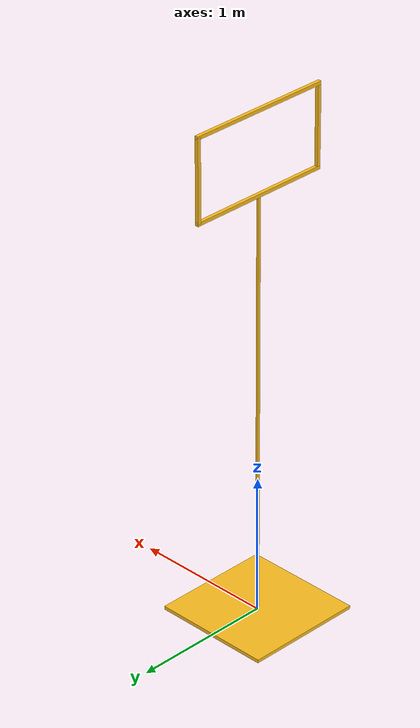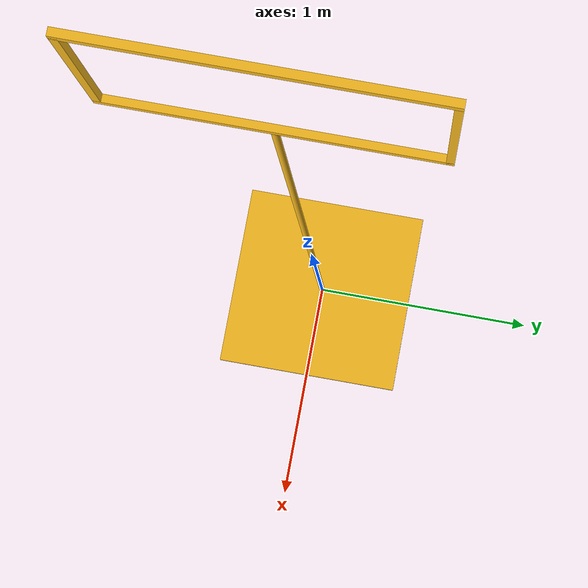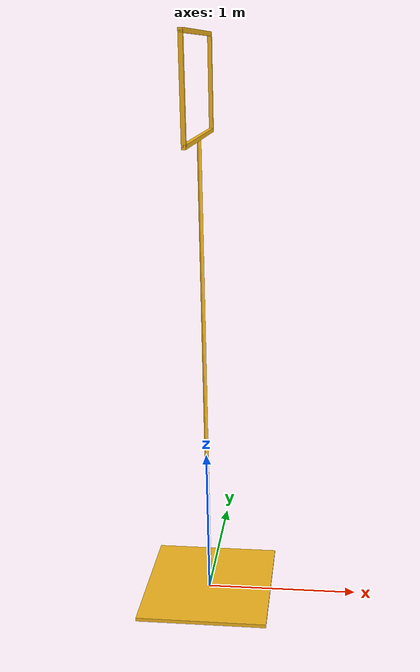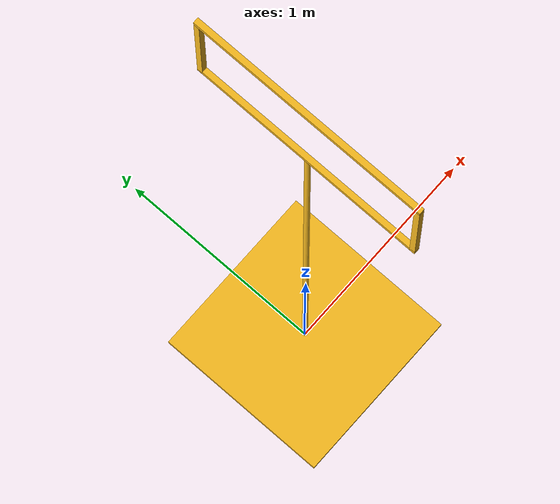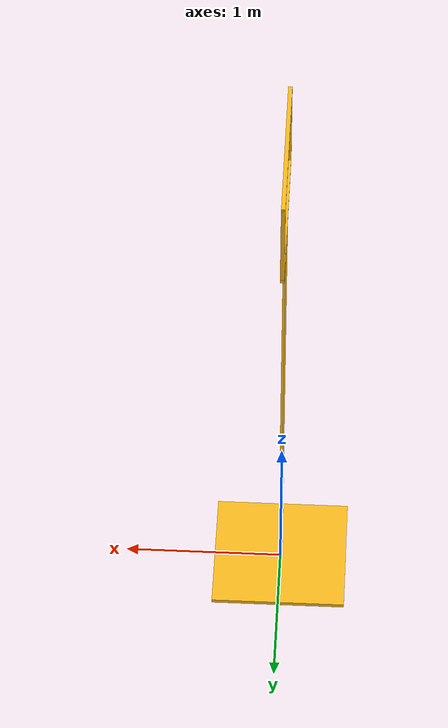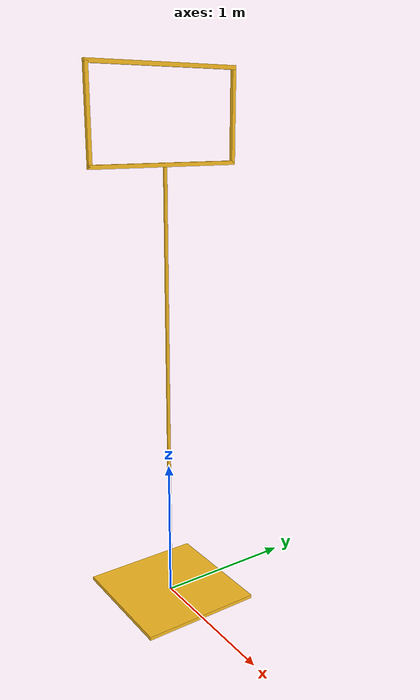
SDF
<?xml version='1.0'?>
<sdf version='1.6'>
  <model name='Gate'>
    <link name='link_2'>
      <inertial>
        <mass>1</mass>
        <inertia>
          <ixx>0.166667</ixx>
          <ixy>0</ixy>
          <ixz>0</ixz>
          <iyy>0.166667</iyy>
          <iyz>0</iyz>
          <izz>0.166667</izz>
        </inertia>
        <pose frame=''>0 0 0.0125 0 -0 0</pose>
      </inertial>
      <pose frame=''>-0 -0 0.0125 0 -0 0</pose>
      <gravity>1</gravity>
      <self_collide>0</self_collide>
      <kinematic>0</kinematic>
      <enable_wind>0</enable_wind>
      <visual name='visual'>
        <pose frame=''>0 0 0 0 -0 0</pose>
        <geometry>
          <box>
            <size>0.85 0.85 0.025</size>
          </box>
        </geometry>
        <material>
          <lighting>1</lighting>
          <script>
            <uri>file://media/materials/scripts/gazebo.material</uri>
            <name>Gazebo/Grey</name>
          </script>
          <shader type='pixel'>
            <normal_map>__default__</normal_map>
          </shader>
          <ambient>0.988 0.741 0.122 1</ambient>
          <diffuse>0.988 0.741 0.122 1</diffuse>
          <specular>0.988 0.741 0.122 1</specular>
          <emissive>0 0 0 1</emissive>
        </material>
        <transparency>0</transparency>
        <cast_shadows>1</cast_shadows>
      </visual>
      <collision name='collision'>
        <laser_retro>0</laser_retro>
        <max_contacts>10</max_contacts>
        <pose frame=''>0 0 0 0 -0 0</pose>
        <geometry>
          <box>
            <size>0.85 0.85 0.025</size>
          </box>
        </geometry>
        <surface>
          <friction>
            <ode>
              <mu>1</mu>
              <mu2>1</mu2>
              <fdir1>0 0 0</fdir1>
              <slip1>0</slip1>
              <slip2>0</slip2>
            </ode>
            <torsional>
              <coefficient>1</coefficient>
              <patch_radius>0</patch_radius>
              <surface_radius>0</surface_radius>
              <use_patch_radius>1</use_patch_radius>
              <ode>
                <slip>0</slip>
              </ode>
            </torsional>
          </friction>
          <bounce>
            <restitution_coefficient>0</restitution_coefficient>
            <threshold>1e+06</threshold>
          </bounce>
          <contact>
            <collide_without_contact>0</collide_without_contact>
            <collide_without_contact_bitmask>1</collide_without_contact_bitmask>
            <collide_bitmask>1</collide_bitmask>
            <ode>
              <soft_cfm>0</soft_cfm>
              <soft_erp>0.2</soft_erp>
              <kp>1e+13</kp>
              <kd>1</kd>
              <max_vel>0.01</max_vel>
              <min_depth>0</min_depth>
            </ode>
            <bullet>
              <split_impulse>1</split_impulse>
              <split_impulse_penetration_threshold>-0.01</split_impulse_penetration_threshold>
              <soft_cfm>0</soft_cfm>
              <soft_erp>0.2</soft_erp>
              <kp>1e+13</kp>
              <kd>1</kd>
            </bullet>
          </contact>
        </surface>
      </collision>
    </link>
    <link name='link_3'>
      <inertial>
        <mass>0.00444894</mass>
        <inertia>
          <ixx>0.00033485</ixx>
          <ixy>0</ixy>
          <ixz>0</ixz>
          <iyy>0.00033485</iyy>
          <iyz>0</iyz>
          <izz>2.61e-06</izz>
        </inertia>
        <pose frame=''>0 0 1.525 0 -0 0</pose>
      </inertial>
      <pose frame=''>0 0 1.525 0 -0 0</pose>
      <gravity>1</gravity>
      <self_collide>0</self_collide>
      <kinematic>0</kinematic>
      <enable_wind>0</enable_wind>
      <visual name='visual'>
        <pose frame=''>0 0 0 0 -0 0</pose>
        <geometry>
          <cylinder>
            <radius>0.0125</radius>
            <length>3.025</length>
          </cylinder>
        </geometry>
        <material>
          <lighting>1</lighting>
          <script>
            <uri>file://media/materials/scripts/gazebo.material</uri>
            <name>Gazebo/Grey</name>
          </script>
          <shader type='pixel'>
            <normal_map>__default__</normal_map>
          </shader>
          <ambient>0.988 0.741 0.122 1</ambient>
          <diffuse>0.988 0.741 0.122 1</diffuse>
          <specular>0.988 0.741 0.122 1</specular>
          <emissive>0 0 0 1</emissive>
        </material>
        <transparency>0</transparency>
        <cast_shadows>1</cast_shadows>
      </visual>
      <collision name='collision'>
        <laser_retro>0</laser_retro>
        <max_contacts>10</max_contacts>
        <pose frame=''>0 0 0 0 -0 0</pose>
        <geometry>
          <cylinder>
            <radius>0.0125</radius>
            <length>3.025</length>
          </cylinder>
        </geometry>
        <surface>
          <friction>
            <ode>
              <mu>1</mu>
              <mu2>1</mu2>
              <fdir1>0 0 0</fdir1>
              <slip1>0</slip1>
              <slip2>0</slip2>
            </ode>
            <torsional>
              <coefficient>1</coefficient>
              <patch_radius>0</patch_radius>
              <surface_radius>0</surface_radius>
              <use_patch_radius>1</use_patch_radius>
              <ode>
                <slip>0</slip>
              </ode>
            </torsional>
          </friction>
          <bounce>
            <restitution_coefficient>0</restitution_coefficient>
            <threshold>1e+06</threshold>
          </bounce>
          <contact>
            <collide_without_contact>0</collide_without_contact>
            <collide_without_contact_bitmask>1</collide_without_contact_bitmask>
            <collide_bitmask>1</collide_bitmask>
            <ode>
              <soft_cfm>0</soft_cfm>
              <soft_erp>0.2</soft_erp>
              <kp>1e+13</kp>
              <kd>1</kd>
              <max_vel>0.01</max_vel>
              <min_depth>0</min_depth>
            </ode>
            <bullet>
              <split_impulse>1</split_impulse>
              <split_impulse_penetration_threshold>-0.01</split_impulse_penetration_threshold>
              <soft_cfm>0</soft_cfm>
              <soft_erp>0.2</soft_erp>
              <kp>1e+13</kp>
              <kd>1</kd>
            </bullet>
          </contact>
        </surface>
      </collision>
    </link>
    <link name='link_5'>
      <inertial>
        <mass>1</mass>
        <inertia>
          <ixx>0.166667</ixx>
          <ixy>0</ixy>
          <ixz>0</ixz>
          <iyy>0.166667</iyy>
          <iyz>0</iyz>
          <izz>0.166667</izz>
        </inertia>
        <pose frame=''>0 0 3.0375 0 -0 0</pose>
      </inertial>
      <pose frame=''>0 0 3.0375 0 -0 0</pose>
      <gravity>1</gravity>
      <self_collide>0</self_collide>
      <kinematic>0</kinematic>
      <enable_wind>0</enable_wind>
      <visual name='visual'>
        <pose frame=''>0 0 0 0 -0 0</pose>
        <geometry>
          <box>
            <size>0.025 1.05 0.025</size>
          </box>
        </geometry>
        <material>
          <lighting>1</lighting>
          <script>
            <uri>file://media/materials/scripts/gazebo.material</uri>
            <name>Gazebo/Grey</name>
          </script>
          <shader type='pixel'>
            <normal_map>__default__</normal_map>
          </shader>
          <ambient>0.988 0.741 0.122 1</ambient>
          <diffuse>0.988 0.741 0.122 1</diffuse>
          <specular>0.988 0.741 0.122 1</specular>
          <emissive>0 0 0 1</emissive>
        </material>
        <transparency>0</transparency>
        <cast_shadows>1</cast_shadows>
      </visual>
      <collision name='collision'>
        <laser_retro>0</laser_retro>
        <max_contacts>10</max_contacts>
        <pose frame=''>0 0 0 0 -0 0</pose>
        <geometry>
          <box>
            <size>0.025 1.05 0.025</size>
          </box>
        </geometry>
        <surface>
          <friction>
            <ode>
              <mu>1</mu>
              <mu2>1</mu2>
              <fdir1>0 0 0</fdir1>
              <slip1>0</slip1>
              <slip2>0</slip2>
            </ode>
            <torsional>
              <coefficient>1</coefficient>
              <patch_radius>0</patch_radius>
              <surface_radius>0</surface_radius>
              <use_patch_radius>1</use_patch_radius>
              <ode>
                <slip>0</slip>
              </ode>
            </torsional>
          </friction>
          <bounce>
            <restitution_coefficient>0</restitution_coefficient>
            <threshold>1e+06</threshold>
          </bounce>
          <contact>
            <collide_without_contact>0</collide_without_contact>
            <collide_without_contact_bitmask>1</collide_without_contact_bitmask>
            <collide_bitmask>1</collide_bitmask>
            <ode>
              <soft_cfm>0</soft_cfm>
              <soft_erp>0.2</soft_erp>
              <kp>1e+13</kp>
              <kd>1</kd>
              <max_vel>0.01</max_vel>
              <min_depth>0</min_depth>
            </ode>
            <bullet>
              <split_impulse>1</split_impulse>
              <split_impulse_penetration_threshold>-0.01</split_impulse_penetration_threshold>
              <soft_cfm>0</soft_cfm>
              <soft_erp>0.2</soft_erp>
              <kp>1e+13</kp>
              <kd>1</kd>
            </bullet>
          </contact>
        </surface>
      </collision>
    </link>
    <link name='link_5_clone'>
      <inertial>
        <mass>1</mass>
        <inertia>
          <ixx>0.166667</ixx>
          <ixy>0</ixy>
          <ixz>0</ixz>
          <iyy>0.166667</iyy>
          <iyz>0</iyz>
          <izz>0.166667</izz>
        </inertia>
        <pose frame=''>0 0 3.6125 0 -0 0</pose>
      </inertial>
      <pose frame=''>-0 0 3.6125 0 -0 0</pose>
      <gravity>1</gravity>
      <self_collide>0</self_collide>
      <kinematic>0</kinematic>
      <enable_wind>0</enable_wind>
      <visual name='visual'>
        <pose frame=''>0 0 0 0 -0 0</pose>
        <geometry>
          <box>
            <size>0.025 1.05 0.025</size>
          </box>
        </geometry>
        <material>
          <lighting>1</lighting>
          <script>
            <uri>file://media/materials/scripts/gazebo.material</uri>
            <name>Gazebo/Grey</name>
          </script>
          <shader type='pixel'>
            <normal_map>__default__</normal_map>
          </shader>
          <ambient>0.988 0.741 0.122 1</ambient>
          <diffuse>0.988 0.741 0.122 1</diffuse>
          <specular>0.988 0.741 0.122 1</specular>
          <emissive>0 0 0 1</emissive>
        </material>
        <transparency>0</transparency>
        <cast_shadows>1</cast_shadows>
      </visual>
      <collision name='collision'>
        <laser_retro>0</laser_retro>
        <max_contacts>10</max_contacts>
        <pose frame=''>0 0 0 0 -0 0</pose>
        <geometry>
          <box>
            <size>0.025 1.05 0.025</size>
          </box>
        </geometry>
        <surface>
          <friction>
            <ode>
              <mu>1</mu>
              <mu2>1</mu2>
              <fdir1>0 0 0</fdir1>
              <slip1>0</slip1>
              <slip2>0</slip2>
            </ode>
            <torsional>
              <coefficient>1</coefficient>
              <patch_radius>0</patch_radius>
              <surface_radius>0</surface_radius>
              <use_patch_radius>1</use_patch_radius>
              <ode>
                <slip>0</slip>
              </ode>
            </torsional>
          </friction>
          <bounce>
            <restitution_coefficient>0</restitution_coefficient>
            <threshold>1e+06</threshold>
          </bounce>
          <contact>
            <collide_without_contact>0</collide_without_contact>
            <collide_without_contact_bitmask>1</collide_without_contact_bitmask>
            <collide_bitmask>1</collide_bitmask>
            <ode>
              <soft_cfm>0</soft_cfm>
              <soft_erp>0.2</soft_erp>
              <kp>1e+13</kp>
              <kd>1</kd>
              <max_vel>0.01</max_vel>
              <min_depth>0</min_depth>
            </ode>
            <bullet>
              <split_impulse>1</split_impulse>
              <split_impulse_penetration_threshold>-0.01</split_impulse_penetration_threshold>
              <soft_cfm>0</soft_cfm>
              <soft_erp>0.2</soft_erp>
              <kp>1e+13</kp>
              <kd>1</kd>
            </bullet>
          </contact>
        </surface>
      </collision>
    </link>
    <link name='link_6'>
      <inertial>
        <mass>1</mass>
        <inertia>
          <ixx>0.166667</ixx>
          <ixy>0</ixy>
          <ixz>0</ixz>
          <iyy>0.166667</iyy>
          <iyz>0</iyz>
          <izz>0.166667</izz>
        </inertia>
        <pose frame=''>0 0.5125 3.0375 0 -0 0</pose>
      </inertial>
      <pose frame=''>0 0.5125 3.325 0 -0 0</pose>
      <gravity>1</gravity>
      <self_collide>0</self_collide>
      <kinematic>0</kinematic>
      <enable_wind>0</enable_wind>
      <visual name='visual'>
        <pose frame=''>0 0 0 0 -0 0</pose>
        <geometry>
          <box>
            <size>0.025 0.025 0.575</size>
          </box>
        </geometry>
        <material>
          <lighting>1</lighting>
          <script>
            <uri>file://media/materials/scripts/gazebo.material</uri>
            <name>Gazebo/Grey</name>
          </script>
          <shader type='pixel'>
            <normal_map>__default__</normal_map>
          </shader>
          <ambient>0.988 0.741 0.122 1</ambient>
          <diffuse>0.988 0.741 0.122 1</diffuse>
          <specular>0.988 0.741 0.122 1</specular>
          <emissive>0 0 0 1</emissive>
        </material>
        <transparency>0</transparency>
        <cast_shadows>1</cast_shadows>
      </visual>
      <collision name='collision'>
        <laser_retro>0</laser_retro>
        <max_contacts>10</max_contacts>
        <pose frame=''>0 0 0 0 -0 0</pose>
        <geometry>
          <box>
            <size>0.025 0.025 0.575</size>
          </box>
        </geometry>
        <surface>
          <friction>
            <ode>
              <mu>1</mu>
              <mu2>1</mu2>
              <fdir1>0 0 0</fdir1>
              <slip1>0</slip1>
              <slip2>0</slip2>
            </ode>
            <torsional>
              <coefficient>1</coefficient>
              <patch_radius>0</patch_radius>
              <surface_radius>0</surface_radius>
              <use_patch_radius>1</use_patch_radius>
              <ode>
                <slip>0</slip>
              </ode>
            </torsional>
          </friction>
          <bounce>
            <restitution_coefficient>0</restitution_coefficient>
            <threshold>1e+06</threshold>
          </bounce>
          <contact>
            <collide_without_contact>0</collide_without_contact>
            <collide_without_contact_bitmask>1</collide_without_contact_bitmask>
            <collide_bitmask>1</collide_bitmask>
            <ode>
              <soft_cfm>0</soft_cfm>
              <soft_erp>0.2</soft_erp>
              <kp>1e+13</kp>
              <kd>1</kd>
              <max_vel>0.01</max_vel>
              <min_depth>0</min_depth>
            </ode>
            <bullet>
              <split_impulse>1</split_impulse>
              <split_impulse_penetration_threshold>-0.01</split_impulse_penetration_threshold>
              <soft_cfm>0</soft_cfm>
              <soft_erp>0.2</soft_erp>
              <kp>1e+13</kp>
              <kd>1</kd>
            </bullet>
          </contact>
        </surface>
      </collision>
    </link>
    <link name='link_6_clone'>
      <inertial>
        <mass>1</mass>
        <inertia>
          <ixx>0.166667</ixx>
          <ixy>0</ixy>
          <ixz>0</ixz>
          <iyy>0.166667</iyy>
          <iyz>0</iyz>
          <izz>0.166667</izz>
        </inertia>
        <pose frame=''>0 -0.5125 3.325 0 -0 0</pose>
      </inertial>
      <pose frame=''>0 -0.5125 3.325 0 -0 0</pose>
      <gravity>1</gravity>
      <self_collide>0</self_collide>
      <kinematic>0</kinematic>
      <enable_wind>0</enable_wind>
      <visual name='visual'>
        <pose frame=''>0 0 0 0 -0 0</pose>
        <geometry>
          <box>
            <size>0.025 0.025 0.575</size>
          </box>
        </geometry>
        <material>
          <lighting>1</lighting>
          <script>
            <uri>file://media/materials/scripts/gazebo.material</uri>
            <name>Gazebo/Grey</name>
          </script>
          <shader type='pixel'>
            <normal_map>__default__</normal_map>
          </shader>
          <ambient>0.988 0.741 0.122 1</ambient>
          <diffuse>0.988 0.741 0.122 1</diffuse>
          <specular>0.988 0.741 0.122 1</specular>
          <emissive>0 0 0 1</emissive>
        </material>
        <transparency>0</transparency>
        <cast_shadows>1</cast_shadows>
      </visual>
      <collision name='collision'>
        <laser_retro>0</laser_retro>
        <max_contacts>10</max_contacts>
        <pose frame=''>0 0 0 0 -0 0</pose>
        <geometry>
          <box>
            <size>0.025 0.025 0.575</size>
          </box>
        </geometry>
        <surface>
          <friction>
            <ode>
              <mu>1</mu>
              <mu2>1</mu2>
              <fdir1>0 0 0</fdir1>
              <slip1>0</slip1>
              <slip2>0</slip2>
            </ode>
            <torsional>
              <coefficient>1</coefficient>
              <patch_radius>0</patch_radius>
              <surface_radius>0</surface_radius>
              <use_patch_radius>1</use_patch_radius>
              <ode>
                <slip>0</slip>
              </ode>
            </torsional>
          </friction>
          <bounce>
            <restitution_coefficient>0</restitution_coefficient>
            <threshold>1e+06</threshold>
          </bounce>
          <contact>
            <collide_without_contact>0</collide_without_contact>
            <collide_without_contact_bitmask>1</collide_without_contact_bitmask>
            <collide_bitmask>1</collide_bitmask>
            <ode>
              <soft_cfm>0</soft_cfm>
              <soft_erp>0.2</soft_erp>
              <kp>1e+13</kp>
              <kd>1</kd>
              <max_vel>0.01</max_vel>
              <min_depth>0</min_depth>
            </ode>
            <bullet>
              <split_impulse>1</split_impulse>
              <split_impulse_penetration_threshold>-0.01</split_impulse_penetration_threshold>
              <soft_cfm>0</soft_cfm>
              <soft_erp>0.2</soft_erp>
              <kp>1e+13</kp>
              <kd>1</kd>
            </bullet>
          </contact>
        </surface>
      </collision>
    </link>
    <joint name='link_2_JOINT_2' type='fixed'>
      <parent>link_2</parent>
      <child>link_3</child>
      <pose frame=''>0 0 0 0 -0 0</pose>
      <physics>
        <ode>
          <limit>
            <cfm>0</cfm>
            <erp>0.2</erp>
          </limit>
          <suspension>
            <cfm>0</cfm>
            <erp>0.2</erp>
          </suspension>
        </ode>
      </physics>
    </joint>
    <joint name='link_3_JOINT_3' type='fixed'>
      <parent>link_3</parent>
      <child>link_5</child>
      <pose frame=''>0 0 0 0 -0 0</pose>
      <physics>
        <ode>
          <limit>
            <cfm>0</cfm>
            <erp>0.2</erp>
          </limit>
          <suspension>
            <cfm>0</cfm>
            <erp>0.2</erp>
          </suspension>
        </ode>
      </physics>
    </joint>
    <joint name='link_5_JOINT_0' type='fixed'>
      <parent>link_5</parent>
      <child>link_6_clone</child>
      <pose frame=''>0 0 0 0 -0 0</pose>
      <physics>
        <ode>
          <limit>
            <cfm>0</cfm>
            <erp>0.2</erp>
          </limit>
          <suspension>
            <cfm>0</cfm>
            <erp>0.2</erp>
          </suspension>
        </ode>
      </physics>
    </joint>
    <joint name='link_5_JOINT_1' type='fixed'>
      <parent>link_5</parent>
      <child>link_6</child>
      <pose frame=''>0 0 0 0 -0 0</pose>
      <physics>
        <ode>
          <limit>
            <cfm>0</cfm>
            <erp>0.2</erp>
          </limit>
          <suspension>
            <cfm>0</cfm>
            <erp>0.2</erp>
          </suspension>
        </ode>
      </physics>
    </joint>
    <joint name='link_6_JOINT_3' type='fixed'>
      <parent>link_6</parent>
      <child>link_5_clone</child>
      <pose frame=''>0 0 0 0 -0 0</pose>
      <physics>
        <ode>
          <limit>
            <cfm>0</cfm>
            <erp>0.2</erp>
          </limit>
          <suspension>
            <cfm>0</cfm>
            <erp>0.2</erp>
          </suspension>
        </ode>
      </physics>
    </joint>
    <joint name='link_6_clone_JOINT_2' type='fixed'>
      <parent>link_6_clone</parent>
      <child>link_5_clone</child>
      <pose frame=''>0 0 0 0 -0 0</pose>
      <physics>
        <ode>
          <limit>
            <cfm>0</cfm>
            <erp>0.2</erp>
          </limit>
          <suspension>
            <cfm>0</cfm>
            <erp>0.2</erp>
          </suspension>
        </ode>
      </physics>
    </joint>
    <static>0</static>
    <allow_auto_disable>1</allow_auto_disable>
  </model>
</sdf>
